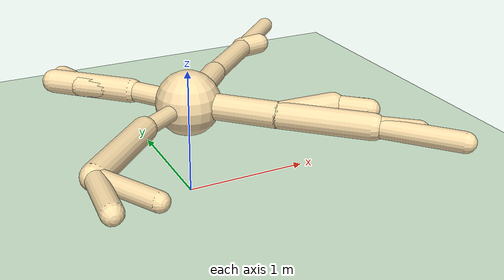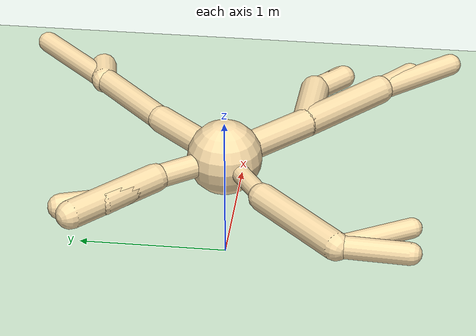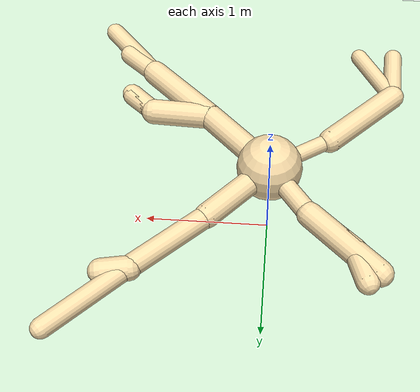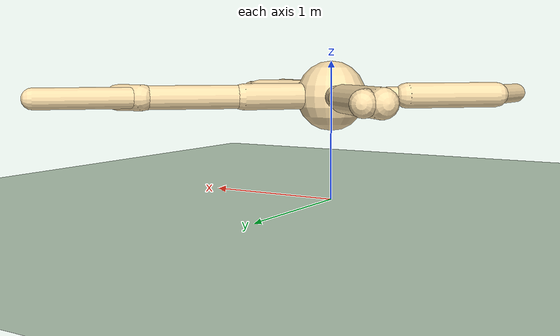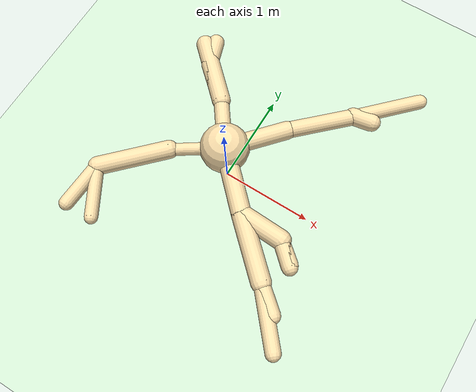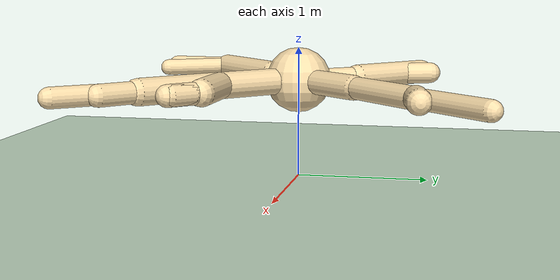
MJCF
<mujoco model="ant_competevo">
  <compiler angle="degree" coordinate="local" inertiafromgeom="true"/>
  <option integrator="RK4" timestep="0.01"/>
  <default>
    <joint armature="1" damping="1" limited="true"/>
    <geom conaffinity="0" condim="3" density="5.0" friction="1 0.5 0.5" margin="0.01" rgba="0.98 0.87 0.67 1" material="geom"/>
  </default>
  <visual>
    <headlight ambient=".1 .1 .1" diffuse=".6 .6 .6" specular="0.3 0.3 0.3"/>
    <map znear=".01"/>
    <quality shadowsize="16384"/>
  </visual>
  <worldbody>
    <light cutoff="100" diffuse="1 1 1" dir="-0 0 -1.3" directional="true" exponent="1" pos="0 0 1.3" specular=".1 .1 .1"/>
    <geom conaffinity="1" condim="3" name="floor" pos="0 0 0" rgba="0.8 0.9 0.8 1" size="200 200 .125" type="plane" material="grid_new"/>
    <body name="0" pos="0 0 0.75" euler="0 0 0">
      <camera name="track" mode="trackcom" pos="0 -3 0.3" xyaxes="1 0 0 0 0 1"/>
      <geom pos="0 0 0" size="0.25" type="sphere"/>
      <joint armature="0" damping="0" limited="false" margin="0.01" name="0_joint" pos="0 0 0" range="-30 30" type="free"/>
      <body name="1" pos="0 0 0">
        <geom fromto="-0 -0 0 0.430505 0.486604 0" size="0.09222" type="capsule"/>
        <body name="11" pos="0.430505 0.486604 0">
          <joint axis="0 0 1" name="11_joint" pos="0 0 0" range="-30 30" type="hinge"/>
          <geom fromto="-0.000436 -0.000419 0 0.498202 0.478424 0" size="0.082385" type="capsule"/>
          <body name="111" pos="0.498202 0.478424 0">
            <geom fromto="-0.043211 -0.043914 0 0.483957 0.491839 0" size="0.072827" type="capsule"/>
            <joint axis="-0.707107 0.707107 0" name="111_joint" pos="0 0 0" range="30 70" type="hinge"/>
          </body>
          <body name="211" pos="0.498202 0.478424 0">
            <joint axis="0 0 1" name="211_joint" pos="0 0 0" range="-30 30" type="hinge"/>
            <geom fromto="-0.011231 -0.002137 0 0.178421 0.033945 0" size="0.089139" type="capsule"/>
          </body>
        </body>
      </body>
      <body name="2" pos="0 0 0">
        <geom fromto="0.000169 -0.000232 0 -0.305688 0.4193 0" size="0.077753" type="capsule"/>
        <body name="12" pos="-0.305688 0.4193 0">
          <joint axis="0 0 1" name="12_joint" pos="0 0 0" range="-30 30" type="hinge"/>
          <geom fromto="0.000033 -0.000031 0 -0.491257 0.46673 0" size="0.094208" type="capsule"/>
        </body>
        <body name="22" pos="-0.305688 0.4193 0">
          <geom fromto="0.000608 -0.000546 0 -0.323955 0.290789 0" size="0.088553" type="capsule"/>
          <body name="122" pos="-0.323955 0.290789 0">
            <geom fromto="0.000019 -0.000059 0 -0.082239 0.253239 0" size="0.084398" type="capsule"/>
          </body>
        </body>
      </body>
      <body name="3" pos="0 0 0">
        <geom fromto="0.000753 0.000501 0 -0.466013 -0.309955 0" size="0.06237" type="capsule"/>
        <body name="13" pos="-0.466013 -0.309955 0">
          <joint axis="0 0 1" name="13_joint" pos="0 0 0" range="-30 30" type="hinge"/>
          <geom fromto="0.009859 0.010043 0 -0.490197 -0.499315 0" size="0.092616" type="capsule"/>
          <body name="113" pos="-0.490197 -0.499315 0">
            <joint axis="0 0 1" name="113_joint" pos="0 0 0" range="-30 30" type="hinge"/>
            <geom fromto="0.000095 0.001545 0 -0.028546 -0.462981 0" size="0.072692" type="capsule"/>
          </body>
          <body name="213" pos="-0.490197 -0.499315 0">
            <joint axis="0 0 1" name="213_joint" pos="0 0 0" range="-30 30" type="hinge"/>
            <geom fromto="-0.00033 0.000588 0 0.256347 -0.456703 0" size="0.066118" type="capsule"/>
          </body>
        </body>
      </body>
      <body name="4" pos="0 0 0">
        <geom fromto="-0.041433 0.041056 0 0.497801 -0.493271 0" size="0.099297" type="capsule"/>
        <body name="14" pos="0.497801 -0.493271 0">
          <joint axis="0 0 1" name="14_joint" pos="0 0 0" range="-30 30" type="hinge"/>
          <geom fromto="-0.002118 0.001968 0 0.499919 -0.464553 0" size="0.099096" type="capsule"/>
          <body name="114" pos="0.499919 -0.464553 0">
            <geom fromto="-0.000419 0.000485 0 0.41433 -0.479962 0" size="0.075398" type="capsule"/>
            <joint axis="0.707107 0.707107 0" name="114_joint" pos="0 0 0" range="30 70" type="hinge"/>
          </body>
          <body name="214" pos="0.499919 -0.464553 0">
            <joint axis="0 0 1" name="214_joint" pos="0 0 0" range="-30 30" type="hinge"/>
            <geom fromto="-0.000252 0.000213 0 0.24043 -0.203045 0" size="0.080341" type="capsule"/>
          </body>
        </body>
        <body name="24" pos="0.497801 -0.493271 0">
          <geom fromto="-0.000307 0.000014 0 0.4495 -0.020488 0" size="0.099684" type="capsule"/>
          <body name="124" pos="0.4495 -0.020488 0">
            <geom fromto="-0.000038 0.000032 0 0.195738 -0.164865 0" size="0.078184" type="capsule"/>
          </body>
          <body name="224" pos="0.4495 -0.020488 0">
            <geom fromto="-0 0 0 0.201802 -0.183429 0" size="0.080507" type="capsule"/>
          </body>
        </body>
      </body>
    </body>
  </worldbody>
  <actuator>
    <motor ctrllimited="true" ctrlrange="-1.0 1.0" joint="11_joint" gear="128.110322" name="11_joint"/>
    <motor ctrllimited="true" ctrlrange="-1.0 1.0" joint="12_joint" gear="153.191674" name="12_joint"/>
    <motor ctrllimited="true" ctrlrange="-1.0 1.0" joint="13_joint" gear="167.57264" name="13_joint"/>
    <motor ctrllimited="true" ctrlrange="-1.0 1.0" joint="14_joint" gear="47.18027" name="14_joint"/>
    <motor ctrllimited="true" ctrlrange="-1.0 1.0" joint="111_joint" gear="29.574999" name="111_joint"/>
    <motor ctrllimited="true" ctrlrange="-1.0 1.0" joint="114_joint" gear="140.467163" name="114_joint"/>
    <motor ctrllimited="true" ctrlrange="-1.0 1.0" joint="211_joint" gear="131.526737" name="211_joint"/>
    <motor ctrllimited="true" ctrlrange="-1.0 1.0" joint="214_joint" gear="154.535749" name="214_joint"/>
    <motor ctrllimited="true" ctrlrange="-1.0 1.0" joint="113_joint" gear="128.585134" name="113_joint"/>
    <motor ctrllimited="true" ctrlrange="-1.0 1.0" joint="213_joint" gear="224.725125" name="213_joint"/>
  </actuator>
  <asset>
    <texture type="skybox" builtin="gradient" rgb1=".4 .5 .6" rgb2="0 0 0" width="100" height="100"/>
    <texture builtin="flat" height="1278" mark="cross" markrgb="1 1 1" name="texgeom" random="0.01" rgb1="0.8 0.6 0.4" rgb2="0.8 0.6 0.4" type="cube" width="127"/>
    <texture builtin="checker" height="100" name="texplane" rgb1="0 0 0" rgb2="0.8 0.8 0.8" type="2d" width="100"/>
    <material name="MatPlane" reflectance="0.5" shininess="1" specular="1" texrepeat="60 60" texture="texplane"/>
    <material name="geom" texture="texgeom" texuniform="true"/>
    <texture name="grid_new" type="2d" builtin="checker" rgb1=".1 .3 .2" rgb2=".2 .4 .3" width="1000" height="1000" mark="none" markrgb=".8 .6 .4"/>
    <material name="grid_new" texture="grid_new" texrepeat="0.2 0.2" texuniform="true" reflectance=".2"/>
  </asset>
</mujoco>
